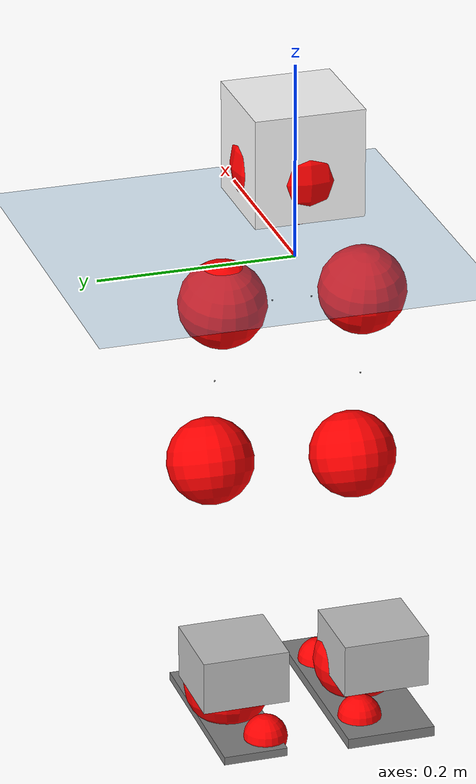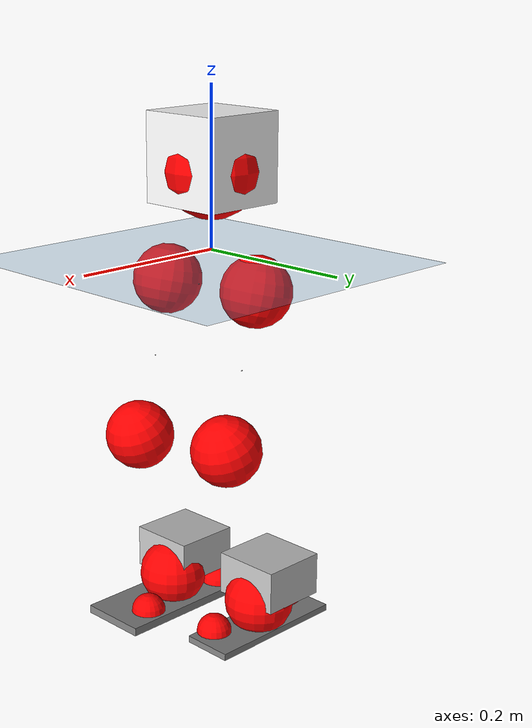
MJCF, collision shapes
<mujoco model="pi_12dof_release_v1">
  <compiler angle="radian" assetdir="assets" balanceinertia="true" inertiafromgeom="false"/>

  <option timestep="0.005" density="1.2" viscosity="2e-05"/>

  <size nkey="1"/>

  <visual>
    <quality shadowsize="8192"/>
    <map shadowclip="0.5"/>
  </visual>

  <default>
    <default class="/">
      <joint armature="0.01" damping="0.01" frictionloss="0.01"/>
      <geom contype="0" conaffinity="0" group="1" solref="-1000 -80"/>
      <site size="0.01 0.005 0.005" group="5"/>
      <general forcelimited="true" biastype="affine" gainprm="20" biasprm="0 -20 -0.5"/>
      <default class="foot">
        <geom size="0.0845 0.036 0.005" type="box" condim="6" group="4" priority="1" friction="0.9 0.2 0.2" solimp="0.015 1 0.005"/>
      </default>
      <default class="reward_collision_sphere">
        <geom group="5" rgba="1 0 0 1"/>
      </default>
    </default>
  </default>

  <asset>
    <texture type="skybox" colorspace="auto" name="//unnamed_texture_0" builtin="gradient" rgb1="0.95 0.95 0.95" rgb2="0.95 0.95 0.95" width="100" height="600"/>
    <texture type="2d" colorspace="auto" name="texplane" builtin="checker" rgb1="0.345 0.575 0.748" rgb2="0.345 0.575 0.748" markrgb="1 1 1" width="512" height="512"/>
    <material name="MatPlane" class="/" texture="texplane" texuniform="true" texrepeat="2 2" specular="0.9"/>
    <mesh name="baselink_1" class="/" file="baselink_1.STL"/>
    <mesh name="r_hip_pitch_link" class="/" file="r_hip_pitch_link.STL"/>
    <mesh name="r_hip_roll_link" class="/" file="r_hip_roll_link.STL"/>
    <mesh name="r_thigh_link" class="/" file="r_thigh_link.STL"/>
    <mesh name="r_calf_link" class="/" file="r_calf_link.STL"/>
    <mesh name="r_ankle_pitch_link" class="/" file="r_ankle_pitch_link.STL"/>
    <mesh name="r_ankle_roll_link" class="/" file="r_ankle_roll_link.STL"/>
    <mesh name="l_hip_pitch_link" class="/" file="l_hip_pitch_link.STL"/>
    <mesh name="l_hip_roll_link" class="/" file="l_hip_roll_link.STL"/>
    <mesh name="l_thigh_link" class="/" file="l_thigh_link.STL"/>
    <mesh name="l_calf_link" class="/" file="l_calf_link.STL"/>
    <mesh name="l_ankle_pitch_link" class="/" file="l_ankle_pitch_link.STL"/>
    <mesh name="l_ankle_roll_link" class="/" file="l_ankle_roll_link.STL"/>
  </asset>

  <worldbody>
    <geom name="floor" class="/" size="100 100 0.125" type="plane" group="0" material="MatPlane"/>
    <light name="toplight_shadow" class="/" pos="0 0 5" dir="0.0990148 0.0990148 -0.990148" type="directional" ambient="0.04 0.04 0.04" diffuse="0.55 0.55 0.55" specular="0.12 0.12 0.12"/>
    <light name="toplight_fill" class="/" pos="0 0 5" dir="0.0990148 0.0990148 -0.990148" type="directional" castshadow="false" ambient="0.04 0.04 0.04" diffuse="0.3 0.3 0.3" specular="0.08 0.08 0.08"/>
    <body name="trunk" pos="0.00157042 0.00232013 -0.000504685" quat="1 8.712e-05 0.000252748 -0.000237969">
      <inertial pos="0.00200447 -0.00029548 0.0593384" quat="0.697471 0.00770999 -0.0040591 0.71656" mass="3.02878" diaginertia="0.00725876 0.00680103 0.0227366"/>
      <joint name="//unnamed_joint_0" type="free"/>
      <geom name="//unnamed_geom_1" class="/" type="mesh" density="0" rgba="1 1 1 1" mesh="baselink_1"/>
      <geom name="//unnamed_geom_2" class="/" size="0.0553146 0.0553146 0.0553146" pos="0 0 0.113709" type="box" rgba="1 1 1 1"/>
      <geom name="//unnamed_geom_3" class="reward_collision_sphere" size="0.060846" pos="0 0 0.0994952"/>
      <site name="imu" class="/" pos="0.000255554 0.0317308 -0.00853033" size="0.0110629"/>
      <camera name="track" class="/" pos="0 -1.89149 0" quat="0.707107 0.707107 0 0" mode="trackcom"/>
      <camera name="ego_camera" class="/" pos="0.0713826 0 0.255845" quat="-0.5 -0.5 0.5 0.5"/>
      <body name="r_hip_pitch_link" pos="0.00245905 -0.0206213 -0.045654" quat="0.99219 0.000806222 -0.124703 0.00289452">
        <inertial pos="0.000432641 -0.0537025 -0.00120767" quat="-0.011192 0.70432 -0.0316355 0.709089" mass="0.470013" diaginertia="8.01484e-05 6.91453e-05 0.000455988"/>
        <joint name="r_hip_pitch_joint" class="/" pos="0 0 0" axis="0.00283471 -0.999992 -0.00290502" stiffness="0.0206464" range="-1.74195 1.29035" armature="0.0109786" damping="0.0370439" frictionloss="0.0122804"/>
        <geom name="//unnamed_geom_4" class="/" type="mesh" density="0" rgba="0.75294 0.75294 0.75294 1" mesh="r_hip_pitch_link"/>
        <geom name="//unnamed_geom_5" class="/" size="0.000553146 0.000553146 0.000553146" type="box" rgba="0.75294 0.75294 0.75294 1"/>
        <body name="r_hip_roll_link" pos="0.00267534 -0.0536099 -0.00167844" quat="1 -0.000230563 3.48733e-05 -0.000148649">
          <inertial pos="-0.00073902 0.00467504 -0.0801661" quat="0.706906 -0.0701231 -0.0766855 0.699633" mass="0.517508" diaginertia="0.000272837 0.000213156 0.000779066"/>
          <joint name="r_hip_roll_joint" class="/" pos="0 0 0" axis="-0.999967 -0.00340284 -0.00737951" range="-0.0735009 0.410587" armature="0.0121331" damping="0" frictionloss="0.00998826"/>
          <geom name="//unnamed_geom_6" class="/" type="mesh" density="0" rgba="0.75294 0.75294 0.75294 1" mesh="r_hip_roll_link"/>
          <geom name="//unnamed_geom_7" class="/" size="0.000553146 0.000553146 0.000553146" type="box" rgba="0.75294 0.75294 0.75294 1"/>
          <geom name="//unnamed_geom_8" class="reward_collision_sphere" size="0.0442517"/>
          <body name="r_thigh_link" pos="-0.00678285 -0.00512853 -0.10013" quat="1 -8.96484e-05 -0.000331434 -0.000316894">
            <inertial pos="-0.00147987 0.00107122 -0.0687777" quat="0.73943 0.673232 0.000981714 -0.00123683" mass="0.144322" diaginertia="9.61232e-05 6.95589e-05 0.000333609"/>
            <joint name="r_thigh_joint" class="/" pos="0 0 0" axis="-0.00256642 -0.00179264 -0.999995" range="-0.259579 0.612375" armature="0.0124999" damping="0.00783785" frictionloss="0.0146125"/>
            <geom name="//unnamed_geom_9" class="/" type="mesh" density="0" rgba="0.75294 0.75294 0.75294 1" mesh="r_thigh_link"/>
            <geom name="//unnamed_geom_10" class="/" size="0.000553146 0.000553146 0.000553146" type="box" rgba="0.75294 0.75294 0.75294 1"/>
            <body name="r_calf_link" pos="0.000793802 -0.00171899 -0.105123" quat="0.94767 7.01083e-05 0.31925 -5.28256e-05">
              <inertial pos="-0.00300788 0.000203231 -0.0998069" quat="0.999782 -0.0098116 -0.0142056 -0.0117532" mass="1.0426" diaginertia="0.00256651 0.00252201 0.0009781"/>
              <joint name="r_calf_joint" class="/" pos="0 0 0" axis="0.0118363 -0.999896 -0.00827714" stiffness="0.0200349" range="-1.73802 0.644464" armature="0.012489" damping="0.0197935" frictionloss="0.0109057"/>
              <geom name="//unnamed_geom_11" class="/" type="mesh" density="0" rgba="0.75294 0.75294 0.75294 1" mesh="r_calf_link"/>
              <geom name="//unnamed_geom_12" class="/" size="0.000553146 0.000553146 0.000553146" type="box" rgba="0.75294 0.75294 0.75294 1"/>
              <geom name="//unnamed_geom_13" class="reward_collision_sphere" size="0.0442517"/>
              <body name="r_ankle_pitch_link" pos="0.000838102 0.00229448 -0.196159" quat="0.979928 0.000868624 -0.199352 0.000259743">
                <inertial pos="0.00509414 0.00315696 0.00509813" quat="0.00338008 0.691121 0.0222814 0.722388" mass="0.229387" diaginertia="0.000224713 0.000158084 0.0006549"/>
                <joint name="r_ankle_pitch_joint" class="/" pos="0 0 0" axis="0.00616552 -0.999971 -0.00457584" stiffness="0.00508143" range="-1.31383 0.385058" armature="0.0112837" damping="0.00727284" frictionloss="0.00907372"/>
                <geom name="//unnamed_geom_14" class="/" type="mesh" density="0" rgba="0.75294 0.75294 0.75294 1" mesh="r_ankle_pitch_link"/>
                <geom name="//unnamed_geom_15" class="/" size="0.0431454 0.0442517 0.0276573" type="box" rgba="0.75294 0.75294 0.75294 1"/>
                <body name="r_ankle_roll_link" pos="0.0763828 0.00738931 0.00269398" quat="1 -0.000496681 -3.8469e-05 -0.000434168">
                  <inertial pos="-0.0209578 0.00101348 -0.0272474" quat="0.560482 0.430039 0.434115 0.558991" mass="0.782715" diaginertia="0.000973314 0.000780345 0.00187439"/>
                  <joint name="r_ankle_roll_joint" class="/" pos="0 0 0" axis="-0.999776 0.01848 -0.0102941" stiffness="0.00779027" range="-0.172384 0.224151" armature="0.013903" damping="0" frictionloss="0.0110205"/>
                  <geom name="//unnamed_geom_16" class="/" type="mesh" density="0" rgba="0.75294 0.75294 0.75294 1" mesh="r_ankle_roll_link"/>
                  <geom name="//unnamed_geom_17" class="/" type="mesh" rgba="0.75294 0.75294 0.75294 1" mesh="r_ankle_roll_link"/>
                  <geom name="right_foot" class="foot" size="0.109464 0.0452668 0.00531516" pos="-0.0485402 0 -0.0625399"/>
                  <geom name="//unnamed_geom_19" class="reward_collision_sphere" size="0.0442517" pos="-0.0475884 0 -0.0284272"/>
                  <geom name="//unnamed_geom_20" class="reward_collision_sphere" size="0.0221258" pos="0.0142765 0.0189149 -0.0568544"/>
                  <geom name="//unnamed_geom_21" class="reward_collision_sphere" size="0.0221258" pos="-0.114212 0.0189149 -0.0568544"/>
                  <site name="right_foot" class="foot" pos="-0.0485402 0 -0.0625399" size="0.0110629"/>
                </body>
              </body>
            </body>
          </body>
        </body>
      </body>
      <body name="l_hip_pitch_link" pos="-0.00336822 0.0212933 -0.0420278" quat="0.992235 -0.000157902 -0.124377 0.000149295">
        <inertial pos="-8.0826e-05 0.0487283 0.00395546" quat="-0.0439327 0.709416 0.0376031 0.702414" mass="0.485605" diaginertia="9.32163e-05 7.84297e-05 0.000580421"/>
        <joint name="l_hip_pitch_joint" class="/" pos="0 0 0" axis="-0.000403109 0.999998 -0.00179351" range="-1.28503 1.78754" armature="0.00984048" damping="0.0257745" frictionloss="0.00975849"/>
        <geom name="//unnamed_geom_22" class="/" type="mesh" density="0" rgba="0.75294 0.75294 0.75294 1" mesh="l_hip_pitch_link"/>
        <geom name="//unnamed_geom_23" class="/" size="0.000553146 0.000553146 0.000553146" type="box" rgba="0.75294 0.75294 0.75294 1"/>
        <body name="l_hip_roll_link" pos="0.000872755 0.0508165 0.0026822" quat="1 -0.000110826 0.000325619 0.000579928">
          <inertial pos="0.00211526 0.00331072 -0.0802318" quat="0.703684 -0.0847496 -0.0935345 0.699212" mass="0.518057" diaginertia="0.000280468 0.000214699 0.00079835"/>
          <joint name="l_hip_roll_joint" class="/" pos="0 0 0" axis="-0.999996 0.00228451 0.00168198" stiffness="0.00229157" range="-0.403389 0.0675995" armature="0.0109317" damping="0.0337319" frictionloss="0.0109464"/>
          <geom name="//unnamed_geom_24" class="/" type="mesh" density="0" rgba="0.75294 0.75294 0.75294 1" mesh="l_hip_roll_link"/>
          <geom name="//unnamed_geom_25" class="/" size="0.000553146 0.000553146 0.000553146" type="box" rgba="0.75294 0.75294 0.75294 1"/>
          <geom name="//unnamed_geom_26" class="reward_collision_sphere" size="0.0442517"/>
          <body name="l_thigh_link" pos="0.000634064 0.000869278 -0.0961334" quat="1 -0.000321725 -6.9353e-05 -0.000193944">
            <inertial pos="-7.82906e-05 -0.000773616 -0.0686026" quat="0.680908 0.732289 -0.00316628 0.0103959" mass="0.154821" diaginertia="9.75898e-05 7.21713e-05 0.000325186"/>
            <joint name="l_thigh_joint" class="/" pos="0 0 0" axis="0.000479249 -0.00048234 -1" stiffness="0.0281206" range="-0.609439 0.293973" armature="0.0115013" damping="0.00888855" frictionloss="0.00984684"/>
            <geom name="//unnamed_geom_27" class="/" type="mesh" density="0" rgba="0.75294 0.75294 0.75294 1" mesh="l_thigh_link"/>
            <geom name="//unnamed_geom_28" class="/" size="0.000553146 0.000553146 0.000553146" type="box" rgba="0.75294 0.75294 0.75294 1"/>
            <body name="l_calf_link" pos="-0.00150402 -0.00227894 -0.100758" quat="0.947732 0.000173195 0.319065 0.000607018">
              <inertial pos="-0.000176576 -0.000449745 -0.0977165" quat="0.999985 0.00329398 -0.000411436 0.00444614" mass="1.19672" diaginertia="0.00285829 0.00275099 0.0010863"/>
              <joint name="l_calf_joint" class="/" pos="0 0 0" axis="0.000252273 0.999999 -0.00123814" stiffness="0.00570978" range="-0.769828 1.56675" armature="0.0111531" damping="0.0118511" frictionloss="0.012097"/>
              <geom name="//unnamed_geom_29" class="/" type="mesh" density="0" rgba="0.75294 0.75294 0.75294 1" mesh="l_calf_link"/>
              <geom name="//unnamed_geom_30" class="/" size="0.000553146 0.000553146 0.000553146" type="box" rgba="0.75294 0.75294 0.75294 1"/>
              <geom name="//unnamed_geom_31" class="reward_collision_sphere" size="0.0442517"/>
              <body name="l_ankle_pitch_link" pos="0.00193775 0.000502104 -0.204212" quat="0.98004 5.30561e-05 -0.198798 -8.95085e-05">
                <inertial pos="0.00499006 -0.00238296 0.000711247" quat="-0.00327155 0.708392 0.00185977 0.705809" mass="0.255725" diaginertia="0.000252016 0.000169763 0.000695623"/>
                <joint name="l_ankle_pitch_joint" class="/" pos="0 0 0" axis="-0.000607931 0.999998 -0.00202126" stiffness="0.000131536" range="-0.420345 1.2634" armature="0.0123663" damping="0" frictionloss="0.0123975"/>
                <geom name="//unnamed_geom_32" class="/" type="mesh" density="0" rgba="0.75294 0.75294 0.75294 1" mesh="l_ankle_pitch_link"/>
                <geom name="//unnamed_geom_33" class="/" size="0.0431454 0.0442517 0.0276573" type="box" rgba="0.75294 0.75294 0.75294 1"/>
                <body name="l_ankle_roll_link" pos="0.0663914 0.000632366 -0.00269484" quat="0.999999 -0.000833714 0.000399382 -0.000928301">
                  <inertial pos="-0.0220966 0.000486003 -0.0196647" quat="0.556155 0.426358 0.444458 0.558004" mass="0.729879" diaginertia="0.000868599 0.000773215 0.00169503"/>
                  <joint name="l_ankle_roll_joint" class="/" pos="0 0 0" axis="-0.999961 -0.00642811 0.00606127" range="-0.120508 0.15124" armature="0.00988084" damping="0.00748912" frictionloss="0.0111751"/>
                  <geom name="//unnamed_geom_34" class="/" type="mesh" density="0" rgba="0.75294 0.75294 0.75294 1" mesh="l_ankle_roll_link"/>
                  <geom name="//unnamed_geom_35" class="/" type="mesh" rgba="0.75294 0.75294 0.75294 1" mesh="l_ankle_roll_link"/>
                  <geom name="left_foot" class="foot" size="0.0942985 0.0326619 0.00424707" pos="-0.0485402 0 -0.0625399"/>
                  <geom name="//unnamed_geom_37" class="reward_collision_sphere" size="0.0442517" pos="-0.0475884 0 -0.0284272"/>
                  <geom name="//unnamed_geom_38" class="reward_collision_sphere" size="0.0221258" pos="0.0142765 -0.0189149 -0.0568544"/>
                  <geom name="//unnamed_geom_39" class="reward_collision_sphere" size="0.0221258" pos="-0.114212 -0.0189149 -0.0568544"/>
                  <site name="left_foot" class="foot" pos="-0.0485402 0 -0.0625399" size="0.0110629"/>
                </body>
              </body>
            </body>
          </body>
        </body>
      </body>
    </body>
  </worldbody>

  <contact>
    <pair class="/" geom1="floor" geom2="right_foot" name="//unnamed_contact_1"/>
    <pair class="/" geom1="floor" geom2="left_foot" name="//unnamed_contact_0"/>
  </contact>

  <actuator>
    <general name="r_hip_pitch_joint" class="/" joint="r_hip_pitch_joint" forcerange="-22.98 22.98" gainprm="22.3522" biasprm="0 -22.3522 -0.585815"/>
    <general name="r_hip_roll_joint" class="/" joint="r_hip_roll_joint" forcerange="-26.578 26.578" gainprm="22.3522" biasprm="0 -22.3522 -0.585815"/>
    <general name="r_thigh_joint" class="/" joint="r_thigh_joint" forcerange="-23.6052 23.6052" gainprm="22.3522" biasprm="0 -22.3522 -0.585815"/>
    <general name="r_calf_joint" class="/" joint="r_calf_joint" forcerange="-21.4775 21.4775" gainprm="22.3522" biasprm="0 -22.3522 -0.585815"/>
    <general name="r_ankle_pitch_joint" class="/" joint="r_ankle_pitch_joint" forcerange="-24.6371 24.6371" gainprm="22.3522" biasprm="0 -22.3522 -0.585815"/>
    <general name="r_ankle_roll_joint" class="/" joint="r_ankle_roll_joint" forcerange="-23.3191 23.3191" gainprm="22.3522" biasprm="0 -22.3522 -0.585815"/>
    <general name="l_hip_pitch_joint" class="/" joint="l_hip_pitch_joint" forcerange="-25.6385 25.6385" gainprm="22.3522" biasprm="0 -22.3522 -0.585815"/>
    <general name="l_hip_roll_joint" class="/" joint="l_hip_roll_joint" forcerange="-20.3938 20.3938" gainprm="22.3522" biasprm="0 -22.3522 -0.585815"/>
    <general name="l_thigh_joint" class="/" joint="l_thigh_joint" forcerange="-26.9673 26.9673" gainprm="22.3522" biasprm="0 -22.3522 -0.585815"/>
    <general name="l_calf_joint" class="/" joint="l_calf_joint" forcerange="-24.9194 24.9194" gainprm="22.3522" biasprm="0 -22.3522 -0.585815"/>
    <general name="l_ankle_pitch_joint" class="/" joint="l_ankle_pitch_joint" forcerange="-22.8391 22.8391" gainprm="22.3522" biasprm="0 -22.3522 -0.585815"/>
    <general name="l_ankle_roll_joint" class="/" joint="l_ankle_roll_joint" forcerange="-17.3776 17.3776" gainprm="22.3522" biasprm="0 -22.3522 -0.585815"/>
  </actuator>

  <sensor>
    <gyro site="imu" name="imu_angular_velocity"/>
    <velocimeter site="imu" name="imu_linear_velocity"/>
    <framelinvel objtype="site" objname="left_foot" name="left_foot_global_linear_velocity"/>
    <framelinvel objtype="site" objname="right_foot" name="right_foot_global_linear_velocity"/>
  </sensor>

  <keyframe>
    <key name="home" qpos="0 0 0.291 1 0 0 0 0.4 0 0 -0.8 0.4 0 -0.4 0 0 0.8 -0.4 0"/>
  </keyframe>
</mujoco>
